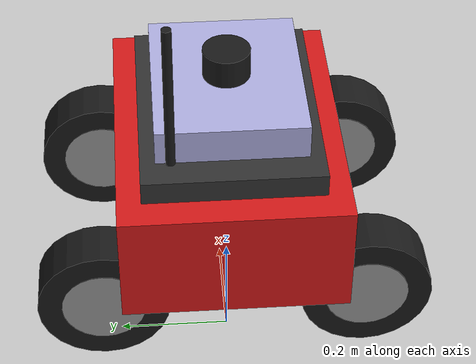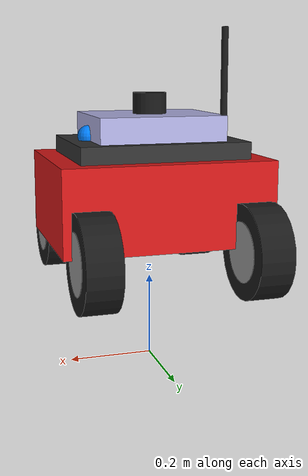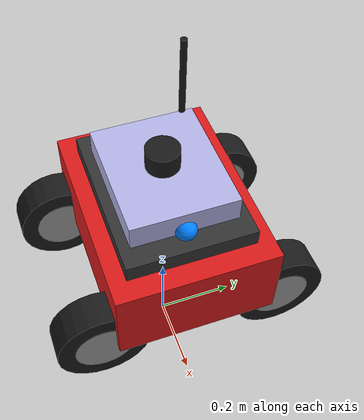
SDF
<?xml version="1.0"?>
<sdf version="1.6">
<model name="PharmaBot">
  <pose>0 0 0.3 0 0 0</pose>

  <!-- ══════════════════════ CHÂSSIS PRINCIPAL ══════════════════════ -->
  <link name="base_link">
    <pose>0 0 0.1 0 0 0</pose>

    <inertial>
      <mass>15.0</mass>
      <inertia>
        <ixx>0.3738</ixx><ixy>0</ixy><ixz>0</ixz>
        <iyy>0.5015</iyy><iyz>0</iyz>
        <izz>0.7243</izz>
      </inertia>
    </inertial>

    <!-- Corps principal rouge -->
    <collision name="base_collision">
      <geometry>
        <box><size>0.50 0.38 0.20</size></box>
      </geometry>
    </collision>
    <visual name="base_visual">
      <geometry>
        <box><size>0.50 0.38 0.20</size></box>
      </geometry>
      <material>
        <ambient>0.85 0.1 0.1 1</ambient>
        <diffuse>0.85 0.1 0.1 1</diffuse>
        <specular>0.3 0.3 0.3 1</specular>
      </material>
    </visual>

    <!-- Dessus du robot (gris foncé) -->
    <visual name="top_visual">
      <pose>0 0 0.12 0 0 0</pose>
      <geometry>
        <box><size>0.40 0.30 0.04</size></box>
      </geometry>
      <material>
        <ambient>0.2 0.2 0.2 1</ambient>
        <diffuse>0.2 0.2 0.2 1</diffuse>
      </material>
    </visual>

    <!-- LED bleue (indicateur actif) -->
    <visual name="led_visual">
      <pose>0.15 0 0.15 0 0 0</pose>
      <geometry>
        <sphere><radius>0.025</radius></sphere>
      </geometry>
      <material>
        <ambient>0 0.5 1 1</ambient>
        <diffuse>0 0.5 1 1</diffuse>
        <emissive>0 0.3 1 1</emissive>
      </material>
    </visual>

    <!-- Antenne -->
    <visual name="antenna_visual">
      <pose>-0.15 0.1 0.25 0 0 0</pose>
      <geometry>
        <cylinder><radius>0.008</radius><length>0.3</length></cylinder>
      </geometry>
      <material>
        <ambient>0.1 0.1 0.1 1</ambient>
        <diffuse>0.1 0.1 0.1 1</diffuse>
      </material>
    </visual>

    <!-- Boîte de livraison sur le robot -->
    <visual name="cargo_bay">
      <pose>0 0 0.16 0 0 0</pose>
      <geometry>
        <box><size>0.30 0.25 0.08</size></box>
      </geometry>
      <material>
        <ambient>0.7 0.7 0.9 1</ambient>
        <diffuse>0.7 0.7 0.9 1</diffuse>
      </material>
    </visual>

    <!-- ══════════════════════ LIDAR ══════════════════════ -->
    <sensor name="hokuyo_lidar" type="ray">
      <pose>0.0 0 0.21 0 0 0</pose>
      <always_on>1</always_on>
      <update_rate>10</update_rate>
      <visualize>true</visualize>
      <ray>
        <scan>
          <horizontal>
            <samples>360</samples>
            <resolution>1</resolution>
            <min_angle>-3.14159</min_angle>
            <max_angle>3.14159</max_angle>
          </horizontal>
        </scan>
        <range>
          <min>0.10</min>
          <max>10.0</max>
          <resolution>0.01</resolution>
        </range>
        <noise>
          <type>gaussian</type>
          <mean>0.0</mean>
          <stddev>0.01</stddev>
        </noise>
      </ray>
      <plugin name="laser_plugin" filename="libgazebo_ros_ray_sensor.so">
        <ros>
          <namespace>/demo</namespace>
          <remapping>~/out:=scan</remapping>
        </ros>
        <output_type>sensor_msgs/LaserScan</output_type>
        <frame_name>base_link</frame_name>
      </plugin>
    </sensor>

    <!-- ══════════════════════ CAMÉRA ══════════════════════ -->
    <sensor name="front_camera" type="camera">
      <pose>0.26 0 0.08 0 0.1 0</pose>
      <always_on>1</always_on>
      <update_rate>15</update_rate>
      <visualize>false</visualize>
      <camera>
        <horizontal_fov>1.047</horizontal_fov>
        <image>
          <width>640</width>
          <height>480</height>
          <format>R8G8B8</format>
        </image>
        <clip>
          <near>0.1</near>
          <far>100</far>
        </clip>
      </camera>
      <plugin name="camera_plugin" filename="libgazebo_ros_camera.so">
        <ros>
          <namespace>/demo</namespace>
          <remapping>image_raw:=image_raw</remapping>
          <remapping>camera_info:=camera_info</remapping>
        </ros>
        <camera_name>front_camera</camera_name>
        <frame_name>camera_link</frame_name>
      </plugin>
    </sensor>

    <!-- Visuel LiDAR (cylindre tournant) -->
    <visual name="lidar_body">
      <pose>0 0 0.22 0 0 0</pose>
      <geometry>
        <cylinder><radius>0.04</radius><length>0.06</length></cylinder>
      </geometry>
      <material>
        <ambient>0.1 0.1 0.1 1</ambient>
        <diffuse>0.1 0.1 0.1 1</diffuse>
      </material>
    </visual>

  </link>

  <!-- ══════════════════════ ROUE AVANT GAUCHE ══════════════════════ -->
  <link name="front_left_wheel">
    <pose>0.19 0.22 0 0 1.5707 0</pose>
    <inertial>
      <mass>1.5</mass>
      <inertia>
        <ixx>0.0051</ixx><ixy>0</ixy><ixz>0</ixz>
        <iyy>0.0051</iyy><iyz>0</iyz>
        <izz>0.0090</izz>
      </inertia>
    </inertial>
    <collision name="col">
      <geometry><cylinder><radius>0.11</radius><length>0.08</length></cylinder></geometry>
      <surface>
        <friction>
          <ode><mu>1.5</mu><mu2>1.5</mu2><slip1>0.02</slip1><slip2>0.02</slip2></ode>
        </friction>
      </surface>
    </collision>
    <visual name="vis">
      <geometry><cylinder><radius>0.11</radius><length>0.08</length></cylinder></geometry>
      <material>
        <ambient>0.1 0.1 0.1 1</ambient>
        <diffuse>0.1 0.1 0.1 1</diffuse>
      </material>
    </visual>
    <!-- Jante -->
    <visual name="rim">
      <geometry><cylinder><radius>0.07</radius><length>0.082</length></cylinder></geometry>
      <material><ambient>0.6 0.6 0.6 1</ambient><diffuse>0.6 0.6 0.6 1</diffuse></material>
    </visual>
  </link>

  <!-- ══════════════════════ ROUE AVANT DROITE ══════════════════════ -->
  <link name="front_right_wheel">
    <pose>0.19 -0.22 0 0 1.5707 0</pose>
    <inertial>
      <mass>1.5</mass>
      <inertia>
        <ixx>0.0051</ixx><ixy>0</ixy><ixz>0</ixz>
        <iyy>0.0051</iyy><iyz>0</iyz>
        <izz>0.0090</izz>
      </inertia>
    </inertial>
    <collision name="col">
      <geometry><cylinder><radius>0.11</radius><length>0.08</length></cylinder></geometry>
      <surface>
        <friction>
          <ode><mu>1.5</mu><mu2>1.5</mu2><slip1>0.02</slip1><slip2>0.02</slip2></ode>
        </friction>
      </surface>
    </collision>
    <visual name="vis">
      <geometry><cylinder><radius>0.11</radius><length>0.08</length></cylinder></geometry>
      <material>
        <ambient>0.1 0.1 0.1 1</ambient>
        <diffuse>0.1 0.1 0.1 1</diffuse>
      </material>
    </visual>
    <visual name="rim">
      <geometry><cylinder><radius>0.07</radius><length>0.082</length></cylinder></geometry>
      <material><ambient>0.6 0.6 0.6 1</ambient><diffuse>0.6 0.6 0.6 1</diffuse></material>
    </visual>
  </link>

  <!-- ══════════════════════ ROUE ARRIÈRE GAUCHE ════════════════════ -->
  <link name="back_left_wheel">
    <pose>-0.19 0.22 0 0 1.5707 0</pose>
    <inertial>
      <mass>1.5</mass>
      <inertia>
        <ixx>0.0051</ixx><ixy>0</ixy><ixz>0</ixz>
        <iyy>0.0051</iyy><iyz>0</iyz>
        <izz>0.0090</izz>
      </inertia>
    </inertial>
    <collision name="col">
      <geometry><cylinder><radius>0.11</radius><length>0.08</length></cylinder></geometry>
      <surface>
        <friction>
          <ode><mu>1.5</mu><mu2>1.5</mu2><slip1>0.02</slip1><slip2>0.02</slip2></ode>
        </friction>
      </surface>
    </collision>
    <visual name="vis">
      <geometry><cylinder><radius>0.11</radius><length>0.08</length></cylinder></geometry>
      <material>
        <ambient>0.1 0.1 0.1 1</ambient>
        <diffuse>0.1 0.1 0.1 1</diffuse>
      </material>
    </visual>
    <visual name="rim">
      <geometry><cylinder><radius>0.07</radius><length>0.082</length></cylinder></geometry>
      <material><ambient>0.6 0.6 0.6 1</ambient><diffuse>0.6 0.6 0.6 1</diffuse></material>
    </visual>
  </link>

  <!-- ══════════════════════ ROUE ARRIÈRE DROITE ════════════════════ -->
  <link name="back_right_wheel">
    <pose>-0.19 -0.22 0 0 1.5707 0</pose>
    <inertial>
      <mass>1.5</mass>
      <inertia>
        <ixx>0.0051</ixx><ixy>0</ixy><ixz>0</ixz>
        <iyy>0.0051</iyy><iyz>0</iyz>
        <izz>0.0090</izz>
      </inertia>
    </inertial>
    <collision name="col">
      <geometry><cylinder><radius>0.11</radius><length>0.08</length></cylinder></geometry>
      <surface>
        <friction>
          <ode><mu>1.5</mu><mu2>1.5</mu2><slip1>0.02</slip1><slip2>0.02</slip2></ode>
        </friction>
      </surface>
    </collision>
    <visual name="vis">
      <geometry><cylinder><radius>0.11</radius><length>0.08</length></cylinder></geometry>
      <material>
        <ambient>0.1 0.1 0.1 1</ambient>
        <diffuse>0.1 0.1 0.1 1</diffuse>
      </material>
    </visual>
    <visual name="rim">
      <geometry><cylinder><radius>0.07</radius><length>0.082</length></cylinder></geometry>
      <material><ambient>0.6 0.6 0.6 1</ambient><diffuse>0.6 0.6 0.6 1</diffuse></material>
    </visual>
  </link>

  <!-- ══════════════════════ JOINTS ══════════════════════ -->
  <joint name="front_left_wheel_joint" type="revolute">
    <parent>base_link</parent>
    <child>front_left_wheel</child>
    <axis>
      <xyz>0 0 1</xyz>
      <dynamics><damping>0.05</damping></dynamics>
    </axis>
  </joint>

  <joint name="front_right_wheel_joint" type="revolute">
    <parent>base_link</parent>
    <child>front_right_wheel</child>
    <axis>
      <xyz>0 0 1</xyz>
      <dynamics><damping>0.05</damping></dynamics>
    </axis>
  </joint>

  <joint name="back_left_wheel_joint" type="revolute">
    <parent>base_link</parent>
    <child>back_left_wheel</child>
    <axis>
      <xyz>0 0 1</xyz>
      <dynamics><damping>0.05</damping></dynamics>
    </axis>
  </joint>

  <joint name="back_right_wheel_joint" type="revolute">
    <parent>base_link</parent>
    <child>back_right_wheel</child>
    <axis>
      <xyz>0 0 1</xyz>
      <dynamics><damping>0.05</damping></dynamics>
    </axis>
  </joint>

  <!-- ══════════════════════ PLUGIN DIFF DRIVE ROS2 ════════════════ -->
  <!--
    Contrôle les 4 roues en diff drive.
    Topics: /demo/cmd_vel  (input)
            /demo/odom     (output)
    Ces noms correspondent exactement à navigation_bridge.py et delivery_detector.py
  -->
  <plugin name="differential_drive_controller" filename="libgazebo_ros_diff_drive.so">
    <ros>
      <namespace>/demo</namespace>
    </ros>

    <update_rate>20</update_rate>

    <!-- Paires de roues gauches -->
    <left_joint>front_left_wheel_joint</left_joint>
    <left_joint>back_left_wheel_joint</left_joint>
    <!-- Paires de roues droites -->
    <right_joint>front_right_wheel_joint</right_joint>
    <right_joint>back_right_wheel_joint</right_joint>

    <wheel_separation>0.44</wheel_separation>
    <wheel_diameter>0.22</wheel_diameter>

    <max_wheel_acceleration>2.0</max_wheel_acceleration>
    <max_wheel_torque>25</max_wheel_torque>

    <command_topic>cmd_vel</command_topic>
    <odometry_topic>odom</odometry_topic>
    <odometry_frame>odom</odometry_frame>
    <robot_base_frame>base_link</robot_base_frame>

    <publish_odom>true</publish_odom>
    <publish_odom_tf>true</publish_odom_tf>
    <publish_wheel_tf>false</publish_wheel_tf>
  </plugin>

</model>
</sdf>
